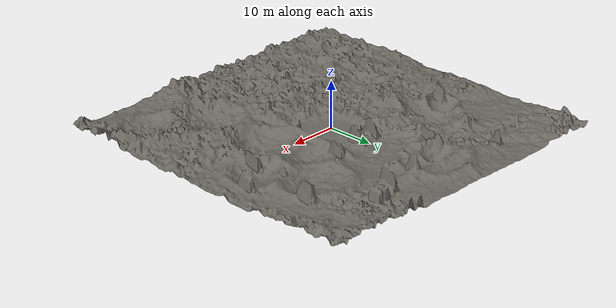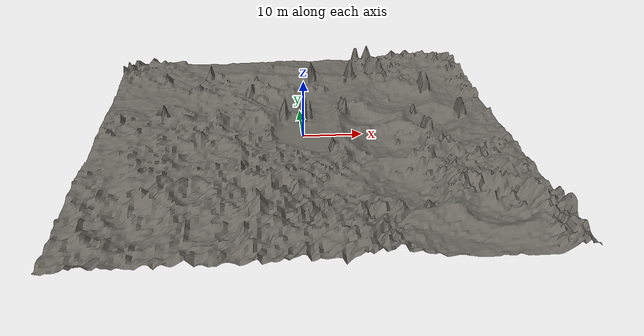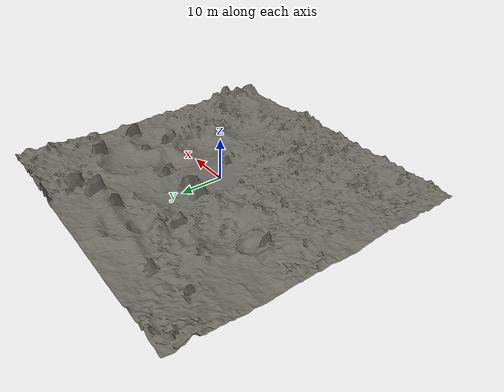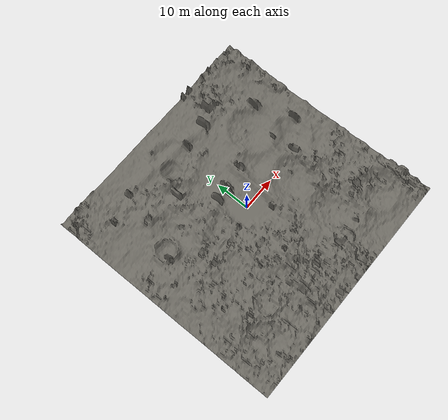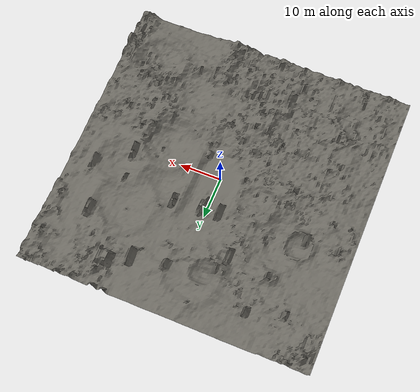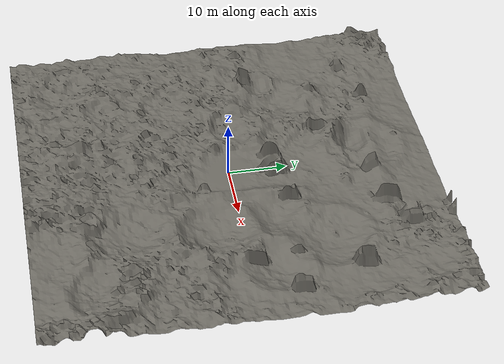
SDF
<?xml version="1.0" ?>
<sdf version="1.9">
  <world name="enhanced_lunar_test">
    <physics name="fast_stable" type="ignored">
      <max_step_size>0.004</max_step_size>
      <real_time_factor>1.0</real_time_factor>
    </physics>

    <plugin filename="gz-sim-physics-system" name="gz::sim::systems::Physics"/>
    <plugin filename="gz-sim-user-commands-system" name="gz::sim::systems::UserCommands"/>
    <plugin filename="gz-sim-scene-broadcaster-system" name="gz::sim::systems::SceneBroadcaster"/>
    <plugin filename="gz-sim-sensors-system" name="gz::sim::systems::Sensors">
      <render_engine>ogre</render_engine>
    </plugin>
    <plugin filename="gz-sim-imu-system" name="gz::sim::systems::Imu"/>

    <scene>
      <ambient>0.33 0.33 0.34 1</ambient>
      <background>0.025 0.025 0.035 1</background>
      <grid>true</grid>
      <shadows>true</shadows>
    </scene>

    <light type="directional" name="low_sun">
      <cast_shadows>true</cast_shadows>
      <pose>0 0 60 0 0 0</pose>
      <diffuse>0.72 0.70 0.66 1</diffuse>
      <specular>0.08 0.08 0.08 1</specular>
      <intensity>2.8</intensity>
      <direction>-0.65 0.25 -0.72</direction>
    </light>

    <model name="enhanced_lunar_terrain">
      <static>true</static>
      <link name="terrain_link">
        <collision name="terrain_collision">
          <geometry>
            <mesh><uri>file:///mnt/c/Users/Username/OneDrive/Desktop/husky/lunar_enhanced_nac_04_small/enhanced_lunar_terrain.obj</uri></mesh>
          </geometry>
        </collision>
        <visual name="terrain_visual">
          <geometry>
            <mesh><uri>file:///mnt/c/Users/Username/OneDrive/Desktop/husky/lunar_enhanced_nac_04_small/enhanced_lunar_terrain.obj</uri></mesh>
          </geometry>
          <material>
            <ambient>0.28 0.28 0.27 1</ambient>
            <diffuse>0.42 0.41 0.38 1</diffuse>
            <specular>0.02 0.02 0.02 1</specular>
          </material>
        </visual>
      </link>
    </model>
  </world>
</sdf>
